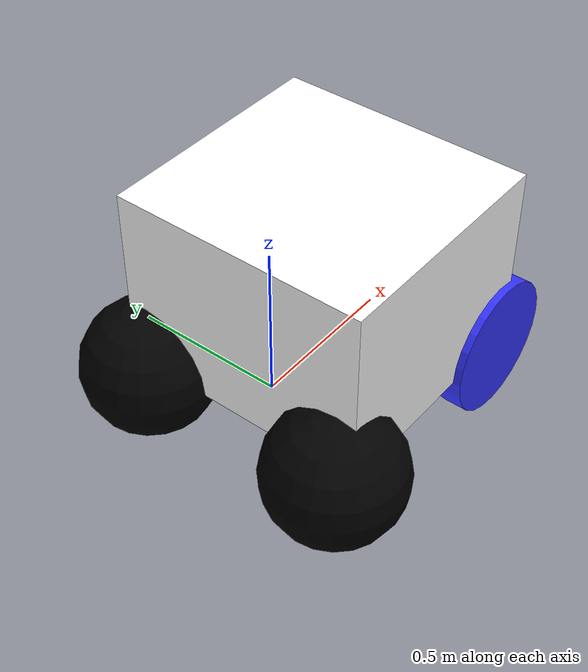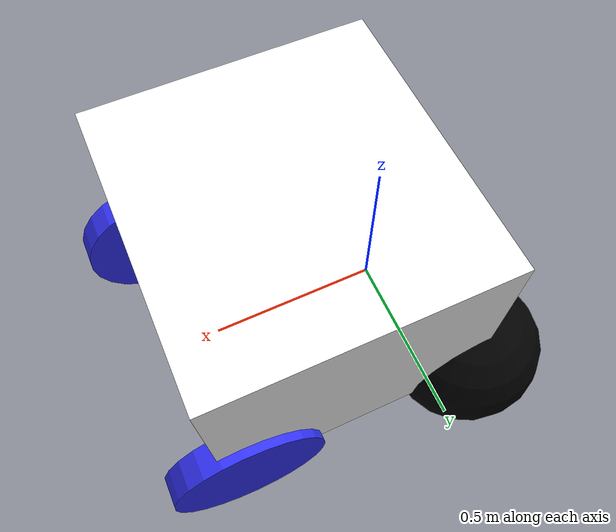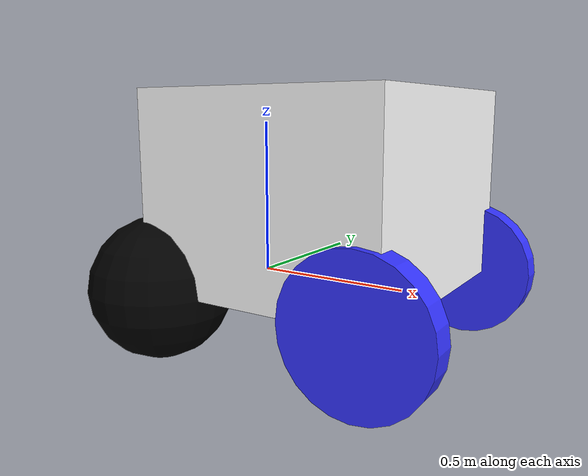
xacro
<?xml version="1.0"?>
<robot xmlns:xacro="http://www.ros.org/wiki/xacro" >

    <xacro:include filename="inertial_macros.xacro"/>

    <material name="white">
        <color rgba="1 1 1 1" />
    </material>

    <material name="orange">
        <color rgba="1 0.3 0.1 1" />
    </material>

    <material name="blue">
        <color rgba="0.2 0.2 1 1" />
    </material>

    <material name="black">
        <color rgba="0 0 0 1" />
    </material>

    <material name="red">
        <color rgba="1 0 0 1" />
    </material>

    <!--  Base Link  -->

    <link name="base_link">

    </link>

    <!-- BASE_FOOTPRINT LINK -->

    <joint name="base_footprint_joint" type="fixed">
        <parent link="base_link"/>
        <child link="base_footprint"/>
        <origin xyz="0 0 0" rpy="0 0 0"/>
    </joint>

    <link name="base_footprint">
    </link>

    <!--  Chassis Link  -->

    <joint name="chassis_joint" type="fixed">
        <parent link="base_link"/>
        <child link="chassis"/>
        <origin xyz="-0.15 0 0"/>
    </joint>

    <link name="chassis">
        <visual>
            <origin xyz="0.391 0 0.3"/>
            <geometry>
                <box size="0.782 0.83 0.6"/>
            </geometry>
            <material name="white"/>
        </visual>
        <collision>
            <origin xyz="0.391 0 0.3"/>
            <geometry>
                <box size="0.782 0.83 0.6"/>
            </geometry>
        </collision>
        <xacro:inertial_box mass="1.5" x="0.782" y="0.83" z="0.6">
            <origin xyz="0.391 0 0.3" rpy="0 0 0"/>
        </xacro:inertial_box>
    </link>

    <gazebo reference="chassis">
        <material>Gazebo/White</material>
    </gazebo>

    <!--  Left Wheel Link  -->

    <joint name="left_wheel_joint" type="continuous">
        <parent link="base_link"/>
        <child link="left_wheel"/>
        <origin xyz="0.567 0.4 0" rpy="-${pi/2} 0 0"/>
        <axis xyz="0 0 1"/>
    </joint>

    <link name="left_wheel">
        <visual>
            <geometry>
                <cylinder radius="0.22" length="0.08"/>
            </geometry>
            <material name="blue"/>
        </visual>
        <collision>
            <geometry>
                <sphere radius="0.22"/>
            </geometry>
        </collision>
        <xacro:inertial_cylinder mass="0.2" length="0.08" radius="0.22">
            <origin xyz="0 0 0" rpy="0 0 0"/>
        </xacro:inertial_cylinder>
    </link>

    <gazebo reference="left_wheel">
        <material>Gazebo/Blue</material>
    </gazebo>

    <!--  Right Wheel Link  -->

    <joint name="right_wheel_joint" type="continuous">
        <parent link="base_link"/>
        <child link="right_wheel"/>
        <origin xyz="0.567 -0.4 0" rpy="${pi/2} 0 0"/>
        <axis xyz="0 0 -1"/>
    </joint>

    <link name="right_wheel">
        <visual>
            <geometry>
                <cylinder radius="0.22" length="0.08"/>
            </geometry>
            <material name="blue"/>
        </visual>
        <collision>
            <geometry>
                <sphere radius="0.22"/>
            </geometry>
        </collision>
        <xacro:inertial_cylinder mass="0.2" length="0.08" radius="0.22">
            <origin xyz="0 0 0" rpy="0 0 0"/>
        </xacro:inertial_cylinder>
    </link>

    <gazebo reference="right_wheel">
        <material>Gazebo/Blue</material>

    </gazebo>

    <!--  Left Caster Wheel Link  -->

    <joint name="left_caster_wheel_joint" type="fixed">
        <parent link="chassis"/>
        <child link="left_caster_wheel"/>
        <origin xyz="0 -0.35 0"/>
    </joint>

    <link name="left_caster_wheel">
        <visual>
            <geometry>
                <sphere radius="0.22"/>
            </geometry>
            <material name="black"/>
        </visual>
        <collision>
            <geometry>
                <sphere radius="0.22"/>
            </geometry>
        </collision>
        <xacro:inertial_sphere mass="0.15" radius="0.22">
            <origin xyz="0 0 0" rpy="0 0 0"/>
        </xacro:inertial_sphere>
    </link>

    <gazebo reference="left_caster_wheel">
        <material>Gazebo/Black</material>
        <mu1 value="0.001"/>
        <mu2 value="0.001"/>
    </gazebo>

    <!--  Right Caster Wheel Link  -->

    <joint name="right_caster_wheel_joint" type="fixed">
        <parent link="chassis"/>
        <child link="right_caster_wheel"/>
        <origin xyz="0 0.35 0"/>
    </joint>

    <link name="right_caster_wheel">
        <visual>
            <geometry>
                <sphere radius="0.22"/>
            </geometry>
            <material name="black"/>
        </visual>
        <collision>
            <geometry>
                <sphere radius="0.22"/>
            </geometry>
        </collision>
        <xacro:inertial_sphere mass="0.15" radius="0.22">
            <origin xyz="0 0 0" rpy="0 0 0"/>
        </xacro:inertial_sphere>
    </link>

    <gazebo reference="right_caster_wheel">
        <material>Gazebo/Black</material>
        <mu1 value="0.001"/>
        <mu2 value="0.001"/>
    </gazebo>

</robot>
